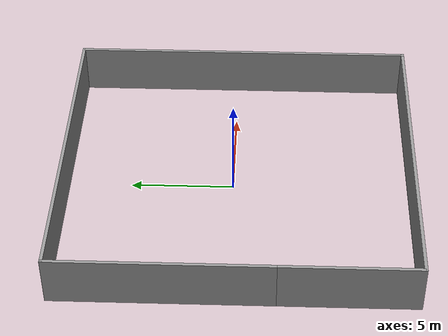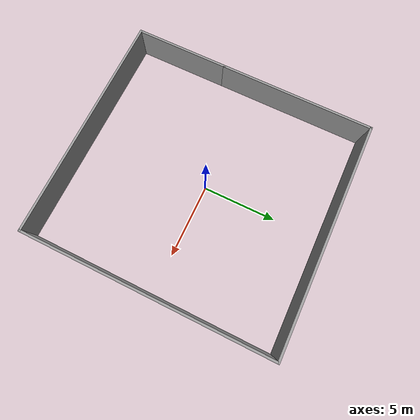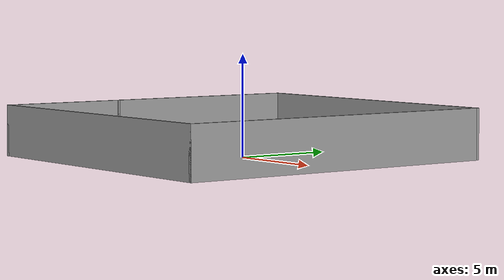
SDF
<?xml version='1.0'?>
<sdf version='1.7'>
  <model name='wall'>
    <pose>0.075 -0.23 0 0 -0 0</pose>
    <link name='Wall_0'>
      <collision name='Wall_0_Collision'>
        <geometry>
          <box>
            <size>6.5 0.15 2.5</size>
          </box>
        </geometry>
        <pose>0 0 1.25 0 -0 0</pose>
      </collision>
      <visual name='Wall_0_Visual'>
        <pose>0 0 1.25 0 -0 0</pose>
        <geometry>
          <box>
            <size>6.5 0.15 2.5</size>
          </box>
        </geometry>
        <material>
          <script>
            <uri>file://media/materials/scripts/gazebo.material</uri>
            <name>Gazebo/Grey</name>
          </script>
          <ambient>1 1 1 1</ambient>
        </material>
        <meta>
          <layer>0</layer>
        </meta>
      </visual>
      <pose>-7.675 -5.175 0 0 -0 -1.5708</pose>
    </link>
    <link name='Wall_1'>
      <collision name='Wall_1_Collision'>
        <geometry>
          <box>
            <size>15.5 0.15 2.5</size>
          </box>
        </geometry>
        <pose>0 0 1.25 0 -0 0</pose>
      </collision>
      <visual name='Wall_1_Visual'>
        <pose>0 0 1.25 0 -0 0</pose>
        <geometry>
          <box>
            <size>15.5 0.15 2.5</size>
          </box>
        </geometry>
        <material>
          <script>
            <uri>file://media/materials/scripts/gazebo.material</uri>
            <name>Gazebo/Grey</name>
          </script>
          <ambient>1 1 1 1</ambient>
        </material>
        <meta>
          <layer>0</layer>
        </meta>
      </visual>
      <pose>-0 -8.35 0 0 -0 0</pose>
    </link>
    <link name='Wall_2'>
      <collision name='Wall_2_Collision'>
        <geometry>
          <box>
            <size>16.75 0.15 2.5</size>
          </box>
        </geometry>
        <pose>0 0 1.25 0 -0 0</pose>
      </collision>
      <visual name='Wall_2_Visual'>
        <pose>0 0 1.25 0 -0 0</pose>
        <geometry>
          <box>
            <size>16.75 0.15 2.5</size>
          </box>
        </geometry>
        <material>
          <script>
            <uri>file://media/materials/scripts/gazebo.material</uri>
            <name>Gazebo/Grey</name>
          </script>
          <ambient>1 1 1 1</ambient>
        </material>
        <meta>
          <layer>0</layer>
        </meta>
      </visual>
      <pose>7.675 -0.05 0 0 -0 1.5708</pose>
    </link>
    <link name='Wall_5'>
      <collision name='Wall_5_Collision'>
        <geometry>
          <box>
            <size>10.5 0.15 2.5</size>
          </box>
        </geometry>
        <pose>0 0 1.25 0 -0 0</pose>
      </collision>
      <visual name='Wall_5_Visual'>
        <pose>0 0 1.25 0 -0 0</pose>
        <geometry>
          <box>
            <size>10.5 0.15 2.5</size>
          </box>
        </geometry>
        <material>
          <script>
            <uri>file://media/materials/scripts/gazebo.material</uri>
            <name>Gazebo/Grey</name>
          </script>
          <ambient>1 1 1 1</ambient>
        </material>
        <meta>
          <layer>0</layer>
        </meta>
      </visual>
      <pose>-7.675 3.175 0 0 -0 1.5708</pose>
    </link>
    <link name='Wall_6'>
      <collision name='Wall_6_Collision'>
        <geometry>
          <box>
            <size>15.5 0.15 2.5</size>
          </box>
        </geometry>
        <pose>0 0 1.25 0 -0 0</pose>
      </collision>
      <visual name='Wall_6_Visual'>
        <pose>0 0 1.25 0 -0 0</pose>
        <geometry>
          <box>
            <size>15.5 0.15 2.5</size>
          </box>
        </geometry>
        <material>
          <script>
            <uri>file://media/materials/scripts/gazebo.material</uri>
            <name>Gazebo/Grey</name>
          </script>
          <ambient>1 1 1 1</ambient>
        </material>
        <meta>
          <layer>0</layer>
        </meta>
      </visual>
      <pose>-0 8.35 0 0 -0 0</pose>
    </link>
    <static>1</static>
  </model>
</sdf>
